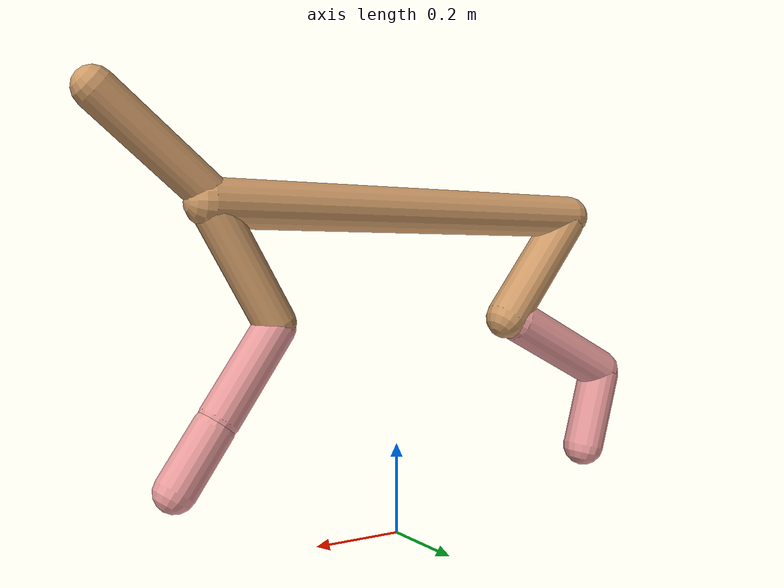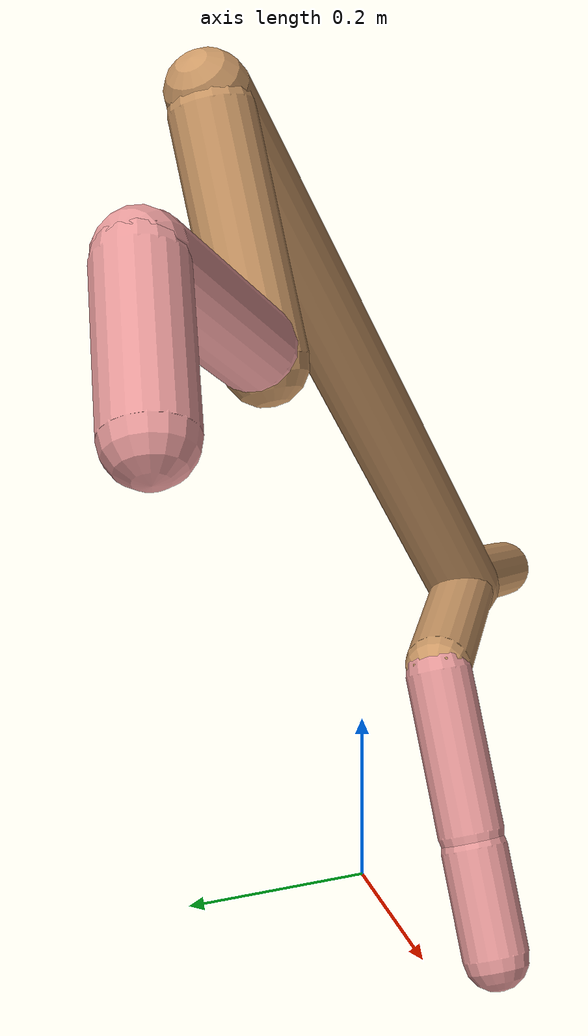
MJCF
<mujoco model="cheetah">
  <compiler angle="radian" coordinate="local" inertiafromgeom="true" settotalmass="14" />
  <default>
    <joint armature=".1" damping=".01" limited="true" solimplimit="0 .8 .03" solreflimit=".02 1" stiffness="8" />
    <geom conaffinity="0" condim="3" contype="1" friction="0.8 .1 .1" rgba="0.8 0.6 .4 1" solimp="0.0 0.8 0.01" solref="0.02 1" />
    <motor ctrllimited="true" ctrlrange="-1 1" />
  </default>
  <size nstack="300000" nuser_geom="1" />
  <option gravity="0 0 -9.81" timestep="0.01" />
  <worldbody>
    <body name="torso" pos="0.0 0.0 0.7144565468559843">
      <joint armature="0" axis="1 0 0" damping="0" limited="false" name="ignorex" pos="0 0 0" stiffness="0" type="slide" />
      <joint armature="0" axis="0 0 1" damping="0" limited="false" name="ignorez" pos="0 0 0" stiffness="0" type="slide" />
      <joint armature="0" axis="0 1 0" damping="0" limited="false" name="ignorey" pos="0 0 0" stiffness="0" type="hinge" />
      <geom fromto="-0.5 0.0 0.0 0.42981205420688984 0.0 0.0" name="torso" size="0.0498177788563369" type="capsule" />
      <geom axisangle="0 1 0 .87" name="head" pos="0.5298120542068898 0.0 0.1" size="0.04141071909056122 0.15" type="capsule" />

      <body name="bthigh" pos="-.5 0 0">
        <joint axis="0 1 0" damping="6" name="bthigh" pos="0 0 0" range="-.52 1.05" stiffness="240" type="hinge" />
        <geom axisangle="0 1 0 -3.8" name="bthigh" pos="0.09973916785208513 0.0 -0.12966091820771067" size="0.04972812851492393 0.14457220346980362" type="capsule" />
        <body name="bshin" pos="0.15947833570417025 0.0 -0.2493218364154213">
          <joint axis="0 1 0" damping="4.5" name="bshin" pos="0 0 0" range="-.785 .785" stiffness="180" type="hinge" />
          <geom axisangle="0 1 0 -2.03" name="bshin" pos="-0.13960417291501065 0.0 -0.06980208645750532" rgba="0.9 0.6 0.6 1" size="0.04972812851492393 0.1495574518653141" type="capsule" />
          <body name="bfoot" pos="-0.2792083458300213 0.0 -0.13960417291501065">
            <joint axis="0 1 0" damping="3" name="bfoot" pos="0 0 0" range="-.4 .785" stiffness="120" type="hinge" />
            <geom axisangle="0 1 0 -.27" name="bfoot" pos="0.029918057333165868 0.0 -0.09673505204390298" rgba="0.9 0.6 0.6 1" size="0.04972812851492393 0.09372266983559685" type="capsule" />
            <inertial mass="10" />
          </body>
        </body>
      </body>
      <body name="fthigh" pos="0.42981205420688984 0.0 0.0">
        <joint axis="0 1 0" damping="4.5" name="fthigh" pos="0 0 0" range="-1.5 0.8" stiffness="180" type="hinge" />
        <geom axisangle="0 1 0 .52" name="fthigh" pos="-0.07101339253865233 0.0 -0.1217372443519754" size="0.04400077458987763 0.13501121415465053" type="capsule" />
        <body name="fshin" pos="-0.14202678507730465 0.0 -0.2434744887039508">
          <joint axis="0 1 0" damping="3" name="fshin" pos="0 0 0" range="-1.2 1.1" stiffness="120" type="hinge" />
          <geom axisangle="0 1 0 -.6" name="fshin" pos="0.06593849601704084 0.0 -0.091299456023595" rgba="0.9 0.6 0.6 1" size="0.04400077458987763 0.10760292255934553" type="capsule" />
          <body name="ffoot" pos="0.13187699203408168 0.0 -0.18259891204719">
            <joint axis="0 1 0" damping="1.5" name="ffoot" pos="0 0 0" range="-3.1 -0.3" stiffness="60" type="hinge" />
            <geom axisangle="0 1 0 -.6" name="ffoot" pos="0.04557241016941286 0.0 -0.07089041581908667" rgba="0.9 0.6 0.6 1" size="0.04400077458987763 0.07105853376560554" type="capsule" />
            <inertial mass="10" />
          </body>
        </body>
      </body>
    </body>
  </worldbody>
  <actuator>
    <motor gear="120" joint="bthigh" name="bthigh" />
    <motor gear="90" joint="bshin" name="bshin" />
    <motor gear="60" joint="bfoot" name="bfoot" />
    <motor gear="120" joint="fthigh" name="fthigh" />
    <motor gear="60" joint="fshin" name="fshin" />
    <motor gear="30" joint="ffoot" name="ffoot" />
  </actuator>
</mujoco>
